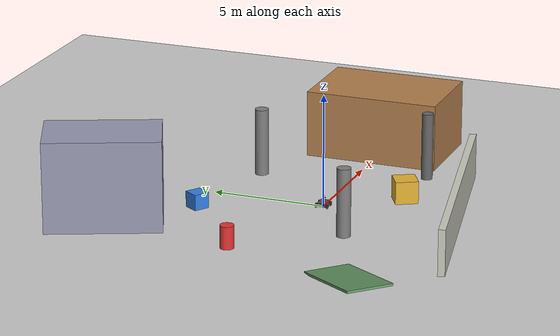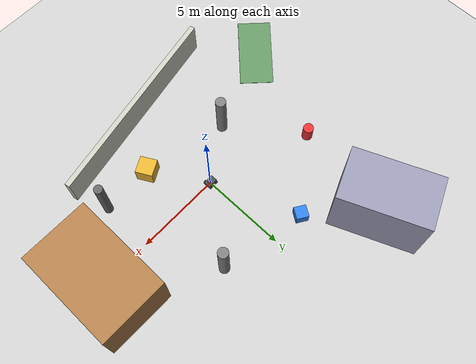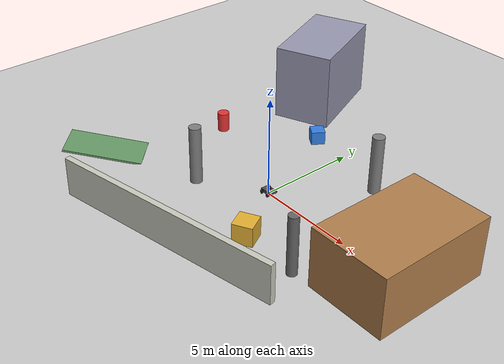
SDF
<?xml version="1.0" ?>
<sdf version="1.6">
  <world name="livo2_test_world">

    <!-- Physics -->
    <physics type="ode">
      <max_step_size>0.004</max_step_size>
      <real_time_factor>1.0</real_time_factor>
      <real_time_update_rate>250</real_time_update_rate>
    </physics>

    <!-- Sunlight -->
    <include>
      <uri>model://sun</uri>
    </include>

    <!-- Ground plane -->
    <include>
      <uri>model://ground_plane</uri>
    </include>

    <!-- ==================== BUILDINGS / OBSTACLES ==================== -->
    <!-- Building 1 -->
    <model name="building_1">
      <static>true</static>
      <pose>8 0 1.5 0 0 0</pose>
      <link name="link">
        <collision name="collision">
          <geometry><box><size>4 6 3</size></box></geometry>
        </collision>
        <visual name="visual">
          <geometry><box><size>4 6 3</size></box></geometry>
          <material>
            <ambient>0.7 0.5 0.3 1</ambient>
            <diffuse>0.7 0.5 0.3 1</diffuse>
          </material>
        </visual>
      </link>
    </model>

    <!-- Building 2 -->
    <model name="building_2">
      <static>true</static>
      <pose>-5 8 2 0 0 0.4</pose>
      <link name="link">
        <collision name="collision">
          <geometry><box><size>3 5 4</size></box></geometry>
        </collision>
        <visual name="visual">
          <geometry><box><size>3 5 4</size></box></geometry>
          <material>
            <ambient>0.6 0.6 0.7 1</ambient>
            <diffuse>0.6 0.6 0.7 1</diffuse>
          </material>
        </visual>
      </link>
    </model>

    <!-- Wall -->
    <model name="wall_1">
      <static>true</static>
      <pose>0 -6 1 0 0 0.2</pose>
      <link name="link">
        <collision name="collision">
          <geometry><box><size>12 0.3 2</size></box></geometry>
        </collision>
        <visual name="visual">
          <geometry><box><size>12 0.3 2</size></box></geometry>
          <material>
            <ambient>0.8 0.8 0.75 1</ambient>
            <diffuse>0.8 0.8 0.75 1</diffuse>
          </material>
        </visual>
      </link>
    </model>

    <!-- Pillars -->
    <model name="pillar_1">
      <static>true</static>
      <pose>3 4 1.5 0 0 0</pose>
      <link name="link">
        <collision name="collision">
          <geometry><cylinder><radius>0.3</radius><length>3</length></cylinder></geometry>
        </collision>
        <visual name="visual">
          <geometry><cylinder><radius>0.3</radius><length>3</length></cylinder></geometry>
          <material><ambient>0.5 0.5 0.5 1</ambient></material>
        </visual>
      </link>
    </model>

    <model name="pillar_2">
      <static>true</static>
      <pose>-3 -2 1.5 0 0 0</pose>
      <link name="link">
        <collision name="collision">
          <geometry><cylinder><radius>0.3</radius><length>3</length></cylinder></geometry>
        </collision>
        <visual name="visual">
          <geometry><cylinder><radius>0.3</radius><length>3</length></cylinder></geometry>
          <material><ambient>0.5 0.5 0.5 1</ambient></material>
        </visual>
      </link>
    </model>

    <model name="pillar_3">
      <static>true</static>
      <pose>5 -3 1.5 0 0 0</pose>
      <link name="link">
        <collision name="collision">
          <geometry><cylinder><radius>0.25</radius><length>3</length></cylinder></geometry>
        </collision>
        <visual name="visual">
          <geometry><cylinder><radius>0.25</radius><length>3</length></cylinder></geometry>
          <material><ambient>0.4 0.4 0.4 1</ambient></material>
        </visual>
      </link>
    </model>

    <!-- Ramp -->
    <model name="ramp">
      <static>true</static>
      <pose>-8 -4 0.25 0 0.15 0.8</pose>
      <link name="link">
        <collision name="collision">
          <geometry><box><size>4 2 0.1</size></box></geometry>
        </collision>
        <visual name="visual">
          <geometry><box><size>4 2 0.1</size></box></geometry>
          <material>
            <ambient>0.4 0.6 0.4 1</ambient>
            <diffuse>0.4 0.6 0.4 1</diffuse>
          </material>
        </visual>
      </link>
    </model>

    <!-- Textured boxes (visual features for camera) -->
    <model name="crate_1">
      <static>true</static>
      <pose>2 -3 0.5 0 0 0.5</pose>
      <link name="link">
        <collision name="collision">
          <geometry><box><size>1 1 1</size></box></geometry>
        </collision>
        <visual name="visual">
          <geometry><box><size>1 1 1</size></box></geometry>
          <material>
            <ambient>0.9 0.7 0.2 1</ambient>
            <diffuse>0.9 0.7 0.2 1</diffuse>
          </material>
        </visual>
      </link>
    </model>

    <model name="crate_2">
      <static>true</static>
      <pose>-2 5 0.35 0 0 1.0</pose>
      <link name="link">
        <collision name="collision">
          <geometry><box><size>0.7 0.7 0.7</size></box></geometry>
        </collision>
        <visual name="visual">
          <geometry><box><size>0.7 0.7 0.7</size></box></geometry>
          <material>
            <ambient>0.2 0.5 0.9 1</ambient>
            <diffuse>0.2 0.5 0.9 1</diffuse>
          </material>
        </visual>
      </link>
    </model>

    <model name="barrel_1">
      <static>true</static>
      <pose>-6 2 0.5 0 0 0</pose>
      <link name="link">
        <collision name="collision">
          <geometry><cylinder><radius>0.3</radius><length>1.0</length></cylinder></geometry>
        </collision>
        <visual name="visual">
          <geometry><cylinder><radius>0.3</radius><length>1.0</length></cylinder></geometry>
          <material>
            <ambient>0.9 0.2 0.2 1</ambient>
            <diffuse>0.9 0.2 0.2 1</diffuse>
          </material>
        </visual>
      </link>
    </model>

    <!-- Spawn rover at origin -->
    <include>
      <uri>model://livo2_rover</uri>
      <pose>0 0 0.15 0 0 0</pose>
    </include>

  </world>
</sdf>

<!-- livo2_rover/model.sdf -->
<sdf version="1.6">
  <model name="livo2_rover">
    <static>false</static>

    <!-- ==================== CHASSIS ==================== -->
    <link name="base_link">
      <inertial>
        <mass>10.0</mass>
        <inertia>
          <ixx>0.5</ixx><ixy>0</ixy><ixz>0</ixz>
          <iyy>1.0</iyy><iyz>0</iyz>
          <izz>0.5</izz>
        </inertia>
      </inertial>
      <collision name="chassis_collision">
        <geometry>
          <box><size>0.6 0.4 0.15</size></box>
        </geometry>
      </collision>
      <visual name="chassis_visual">
        <geometry>
          <box><size>0.6 0.4 0.15</size></box>
        </geometry>
        <material>
          <ambient>0.2 0.2 0.2 1</ambient>
          <diffuse>0.3 0.3 0.3 1</diffuse>
        </material>
      </visual>

      <!-- ==================== IMU SENSOR ==================== -->
      <sensor name="imu_sensor" type="imu">
        <always_on>true</always_on>
        <update_rate>200</update_rate>
        <imu>
          <angular_velocity>
            <x><noise type="gaussian"><mean>0.0</mean><stddev>0.003</stddev></noise></x>
            <y><noise type="gaussian"><mean>0.0</mean><stddev>0.003</stddev></noise></y>
            <z><noise type="gaussian"><mean>0.0</mean><stddev>0.003</stddev></noise></z>
          </angular_velocity>
          <linear_acceleration>
            <x><noise type="gaussian"><mean>0.0</mean><stddev>0.05</stddev></noise></x>
            <y><noise type="gaussian"><mean>0.0</mean><stddev>0.05</stddev></noise></y>
            <z><noise type="gaussian"><mean>0.0</mean><stddev>0.05</stddev></noise></z>
          </linear_acceleration>
        </imu>
        <plugin name="imu_plugin" filename="libgazebo_ros_imu_sensor.so">
          <topicName>/rover/imu</topicName>
          <bodyName>base_link</bodyName>
          <frameName>base_link</frameName>
          <updateRateHZ>200.0</updateRateHZ>
          <gaussianNoise>0.0</gaussianNoise>
          <xyzOffset>0 0 0</xyzOffset>
          <rpyOffset>0 0 0</rpyOffset>
        </plugin>
      </sensor>
    </link>

    <!-- ==================== WHEELS ==================== -->
    <!-- Front left wheel -->
    <link name="front_left_wheel">
      <pose>0.2 0.25 -0.05 -1.5708 0 0</pose>
      <inertial>
        <mass>0.5</mass>
        <inertia>
          <ixx>0.001</ixx><ixy>0</ixy><ixz>0</ixz>
          <iyy>0.001</iyy><iyz>0</iyz><izz>0.001</izz>
        </inertia>
      </inertial>
      <collision name="collision">
        <geometry><cylinder><radius>0.1</radius><length>0.05</length></cylinder></geometry>
        <surface>
          <friction><ode><mu>1.0</mu><mu2>1.0</mu2></ode></friction>
        </surface>
      </collision>
      <visual name="visual">
        <geometry><cylinder><radius>0.1</radius><length>0.05</length></cylinder></geometry>
        <material><ambient>0.1 0.1 0.1 1</ambient></material>
      </visual>
    </link>
    <joint name="front_left_wheel_joint" type="revolute">
      <parent>base_link</parent>
      <child>front_left_wheel</child>
      <axis><xyz>0 0 1</xyz></axis>
    </joint>

    <!-- Front right wheel -->
    <link name="front_right_wheel">
      <pose>0.2 -0.25 -0.05 -1.5708 0 0</pose>
      <inertial>
        <mass>0.5</mass>
        <inertia>
          <ixx>0.001</ixx><ixy>0</ixy><ixz>0</ixz>
          <iyy>0.001</iyy><iyz>0</iyz><izz>0.001</izz>
        </inertia>
      </inertial>
      <collision name="collision">
        <geometry><cylinder><radius>0.1</radius><length>0.05</length></cylinder></geometry>
        <surface>
          <friction><ode><mu>1.0</mu><mu2>1.0</mu2></ode></friction>
        </surface>
      </collision>
      <visual name="visual">
        <geometry><cylinder><radius>0.1</radius><length>0.05</length></cylinder></geometry>
        <material><ambient>0.1 0.1 0.1 1</ambient></material>
      </visual>
    </link>
    <joint name="front_right_wheel_joint" type="revolute">
      <parent>base_link</parent>
      <child>front_right_wheel</child>
      <axis><xyz>0 0 1</xyz></axis>
    </joint>

    <!-- Rear left wheel -->
    <link name="rear_left_wheel">
      <pose>-0.2 0.25 -0.05 -1.5708 0 0</pose>
      <inertial>
        <mass>0.5</mass>
        <inertia>
          <ixx>0.001</ixx><ixy>0</ixy><ixz>0</ixz>
          <iyy>0.001</iyy><iyz>0</iyz><izz>0.001</izz>
        </inertia>
      </inertial>
      <collision name="collision">
        <geometry><cylinder><radius>0.1</radius><length>0.05</length></cylinder></geometry>
        <surface>
          <friction><ode><mu>1.0</mu><mu2>1.0</mu2></ode></friction>
        </surface>
      </collision>
      <visual name="visual">
        <geometry><cylinder><radius>0.1</radius><length>0.05</length></cylinder></geometry>
        <material><ambient>0.1 0.1 0.1 1</ambient></material>
      </visual>
    </link>
    <joint name="rear_left_wheel_joint" type="revolute">
      <parent>base_link</parent>
      <child>rear_left_wheel</child>
      <axis><xyz>0 0 1</xyz></axis>
    </joint>

    <!-- Rear right wheel -->
    <link name="rear_right_wheel">
      <pose>-0.2 -0.25 -0.05 -1.5708 0 0</pose>
      <inertial>
        <mass>0.5</mass>
        <inertia>
          <ixx>0.001</ixx><ixy>0</ixy><ixz>0</ixz>
          <iyy>0.001</iyy><iyz>0</iyz><izz>0.001</izz>
        </inertia>
      </inertial>
      <collision name="collision">
        <geometry><cylinder><radius>0.1</radius><length>0.05</length></cylinder></geometry>
        <surface>
          <friction><ode><mu>1.0</mu><mu2>1.0</mu2></ode></friction>
        </surface>
      </collision>
      <visual name="visual">
        <geometry><cylinder><radius>0.1</radius><length>0.05</length></cylinder></geometry>
        <material><ambient>0.1 0.1 0.1 1</ambient></material>
      </visual>
    </link>
    <joint name="rear_right_wheel_joint" type="revolute">
      <parent>base_link</parent>
      <child>rear_right_wheel</child>
      <axis><xyz>0 0 1</xyz></axis>
    </joint>

    <!-- Differential drive plugin (ROS1 Noetic syntax) -->
    <plugin name="diff_drive" filename="libgazebo_ros_diff_drive.so">
      <updateRate>100</updateRate>
      <leftJoint>front_left_wheel_joint</leftJoint>
      <rightJoint>front_right_wheel_joint</rightJoint>
      <wheelSeparation>0.5</wheelSeparation>
      <wheelDiameter>0.2</wheelDiameter>
      <wheelTorque>20</wheelTorque>
      <wheelAcceleration>1.0</wheelAcceleration>
      <commandTopic>/rover/cmd_vel</commandTopic>
      <odometryTopic>/rover/odom</odometryTopic>
      <odometryFrame>odom</odometryFrame>
      <robotBaseFrame>base_link</robotBaseFrame>
      <publishOdom>true</publishOdom>
      <publishOdomTF>true</publishOdomTF>
      <publishWheelTF>false</publishWheelTF>
      <publishWheelJointState>false</publishWheelJointState>
      <legacyMode>false</legacyMode>
    </plugin>

    <!-- Second diff drive for rear wheels (slaved to front) -->
    <plugin name="rear_diff_drive" filename="libgazebo_ros_diff_drive.so">
      <updateRate>100</updateRate>
      <leftJoint>rear_left_wheel_joint</leftJoint>
      <rightJoint>rear_right_wheel_joint</rightJoint>
      <wheelSeparation>0.5</wheelSeparation>
      <wheelDiameter>0.2</wheelDiameter>
      <wheelTorque>20</wheelTorque>
      <wheelAcceleration>1.0</wheelAcceleration>
      <commandTopic>/rover/cmd_vel</commandTopic>
      <odometryTopic>/rover/rear_odom</odometryTopic>
      <odometryFrame>odom</odometryFrame>
      <robotBaseFrame>base_link</robotBaseFrame>
      <publishOdom>false</publishOdom>
      <publishOdomTF>false</publishOdomTF>
      <publishWheelTF>false</publishWheelTF>
      <legacyMode>false</legacyMode>
    </plugin>

    <!-- ==================== SENSOR MAST ==================== -->
    <link name="sensor_mast">
      <pose>0 0 0.175 0 0 0</pose>
      <inertial>
        <mass>0.3</mass>
        <inertia>
          <ixx>0.001</ixx><ixy>0</ixy><ixz>0</ixz>
          <iyy>0.001</iyy><iyz>0</iyz><izz>0.001</izz>
        </inertia>
      </inertial>
      <collision name="mast_collision">
        <geometry><cylinder><radius>0.03</radius><length>0.2</length></cylinder></geometry>
      </collision>
      <visual name="mast_visual">
        <geometry><cylinder><radius>0.03</radius><length>0.2</length></cylinder></geometry>
        <material><ambient>0.5 0.5 0.5 1</ambient></material>
      </visual>
    </link>
    <joint name="mast_joint" type="fixed">
      <parent>base_link</parent>
      <child>sensor_mast</child>
    </joint>

    <!-- ==================== VLP-16 LIDAR ==================== -->
    <link name="velodyne_link">
      <pose>0 0 0.32 0 0 0</pose>
      <inertial>
        <mass>0.83</mass>
        <inertia>
          <ixx>0.001</ixx><ixy>0</ixy><ixz>0</ixz>
          <iyy>0.001</iyy><iyz>0</iyz><izz>0.001</izz>
        </inertia>
      </inertial>
      <collision name="lidar_collision">
        <geometry><cylinder><radius>0.05</radius><length>0.07</length></cylinder></geometry>
      </collision>
      <visual name="lidar_visual">
        <geometry><cylinder><radius>0.05</radius><length>0.07</length></cylinder></geometry>
        <material>
          <ambient>0.0 0.0 0.8 1</ambient>
          <diffuse>0.0 0.0 0.8 1</diffuse>
        </material>
      </visual>

      <sensor name="velodyne" type="ray">
        <always_on>true</always_on>
        <visualize>false</visualize>
        <update_rate>10</update_rate>
        <ray>
          <scan>
            <horizontal>
              <samples>900</samples>
              <resolution>1</resolution>
              <min_angle>-3.14159</min_angle>
              <max_angle>3.14159</max_angle>
            </horizontal>
            <vertical>
              <samples>16</samples>
              <resolution>1</resolution>
              <min_angle>-0.261799</min_angle>
              <max_angle>0.261799</max_angle>
            </vertical>
          </scan>
          <range>
            <min>0.5</min>
            <max>100.0</max>
            <resolution>0.003</resolution>
          </range>
          <noise>
            <type>gaussian</type>
            <mean>0.0</mean>
            <stddev>0.005</stddev>
          </noise>
        </ray>
        <plugin name="velodyne_plugin" filename="libgazebo_ros_velodyne_laser.so">
          <topicName>/rover/velodyne_points</topicName>
          <frameName>velodyne_link</frameName>
          <min_range>0.5</min_range>
          <max_range>100.0</max_range>
          <gaussianNoise>0.005</gaussianNoise>
          <organize_cloud>false</organize_cloud>
        </plugin>
      </sensor>
    </link>
    <joint name="velodyne_joint" type="fixed">
      <parent>sensor_mast</parent>
      <child>velodyne_link</child>
    </joint>

    <!-- ==================== CAMERA ==================== -->
    <link name="camera_link">
      <pose>0.15 0 0.2 0 0 0</pose>
      <inertial>
        <mass>0.1</mass>
        <inertia>
          <ixx>0.0001</ixx><ixy>0</ixy><ixz>0</ixz>
          <iyy>0.0001</iyy><iyz>0</iyz><izz>0.0001</izz>
        </inertia>
      </inertial>
      <collision name="camera_collision">
        <geometry><box><size>0.04 0.08 0.04</size></box></geometry>
      </collision>
      <visual name="camera_visual">
        <geometry><box><size>0.04 0.08 0.04</size></box></geometry>
        <material>
          <ambient>0.8 0.0 0.0 1</ambient>
          <diffuse>0.8 0.0 0.0 1</diffuse>
        </material>
      </visual>

      <sensor name="camera" type="camera">
        <always_on>true</always_on>
        <visualize>false</visualize>
        <update_rate>20</update_rate>
        <camera>
          <horizontal_fov>1.3962634</horizontal_fov>
          <image>
            <width>640</width>
            <height>480</height>
            <format>R8G8B8</format>
          </image>
          <clip>
            <near>0.02</near>
            <far>300</far>
          </clip>
          <noise>
            <type>gaussian</type>
            <mean>0.0</mean>
            <stddev>0.007</stddev>
          </noise>
        </camera>
        <plugin name="camera_plugin" filename="libgazebo_ros_camera.so">
          <cameraName>rover_camera</cameraName>
          <imageTopicName>/rover/camera/image_raw</imageTopicName>
          <cameraInfoTopicName>/rover/camera/camera_info</cameraInfoTopicName>
          <frameName>camera_link</frameName>
          <alwaysOn>true</alwaysOn>
          <updateRate>20.0</updateRate>
          <hackBaseline>0.0</hackBaseline>
          <distortionK1>0.0</distortionK1>
          <distortionK2>0.0</distortionK2>
          <distortionK3>0.0</distortionK3>
          <distortionT1>0.0</distortionT1>
          <distortionT2>0.0</distortionT2>
        </plugin>
      </sensor>
    </link>
    <joint name="camera_joint" type="fixed">
      <parent>base_link</parent>
      <child>camera_link</child>
    </joint>

  </model>
</sdf>
